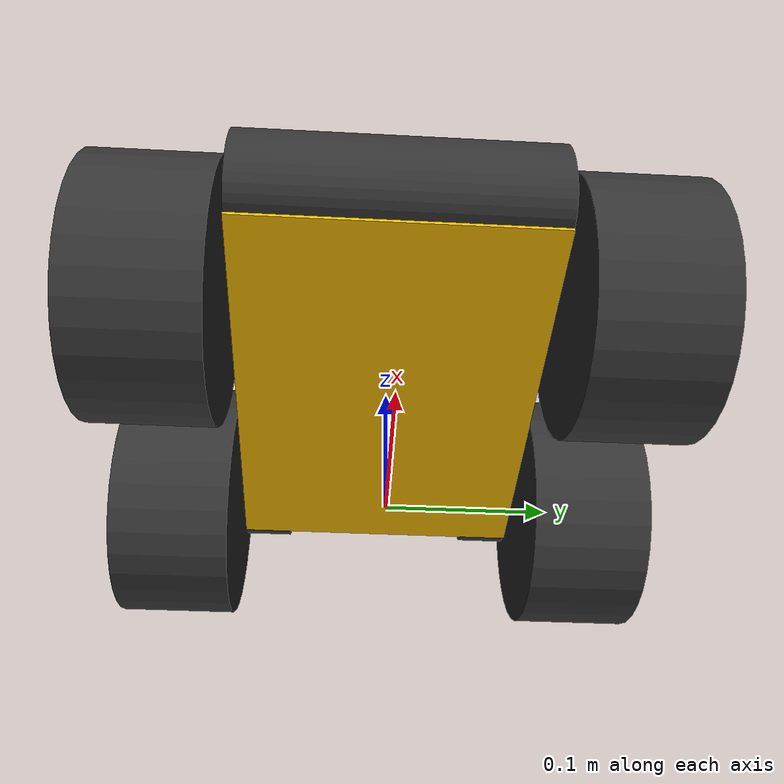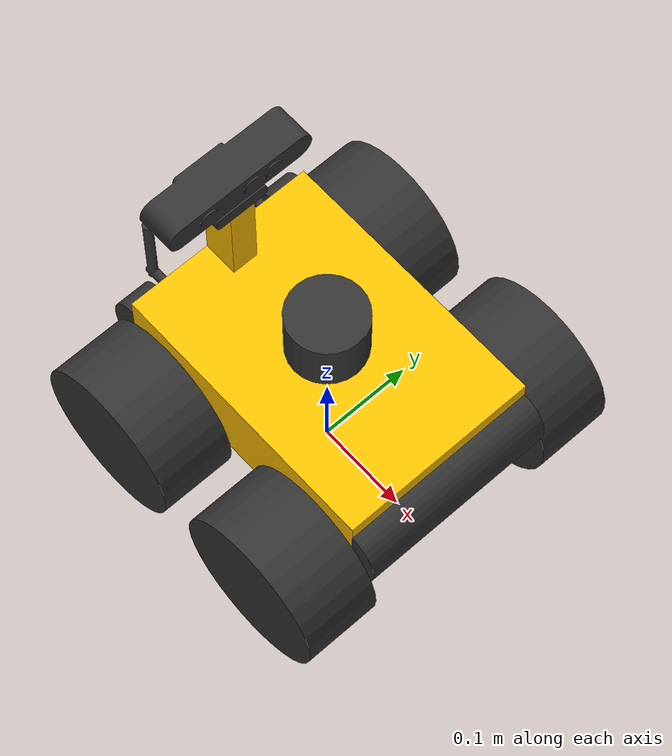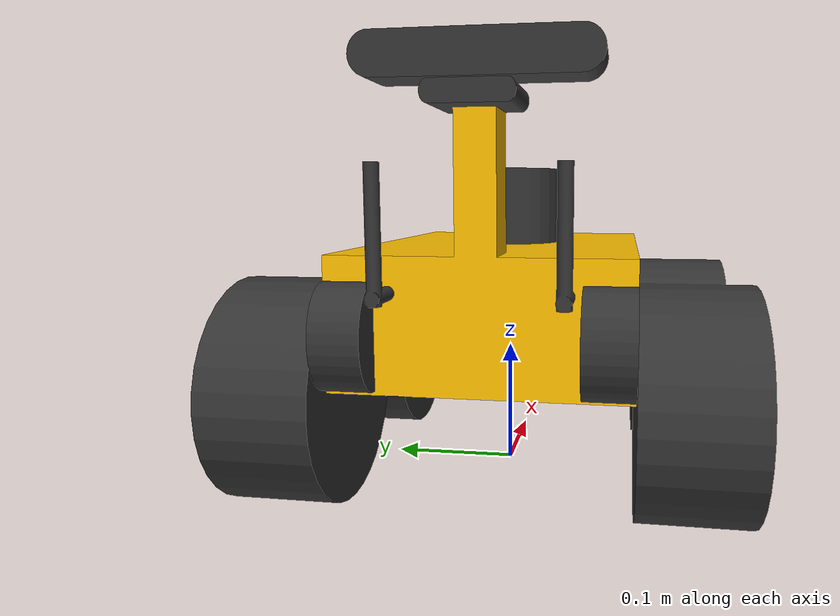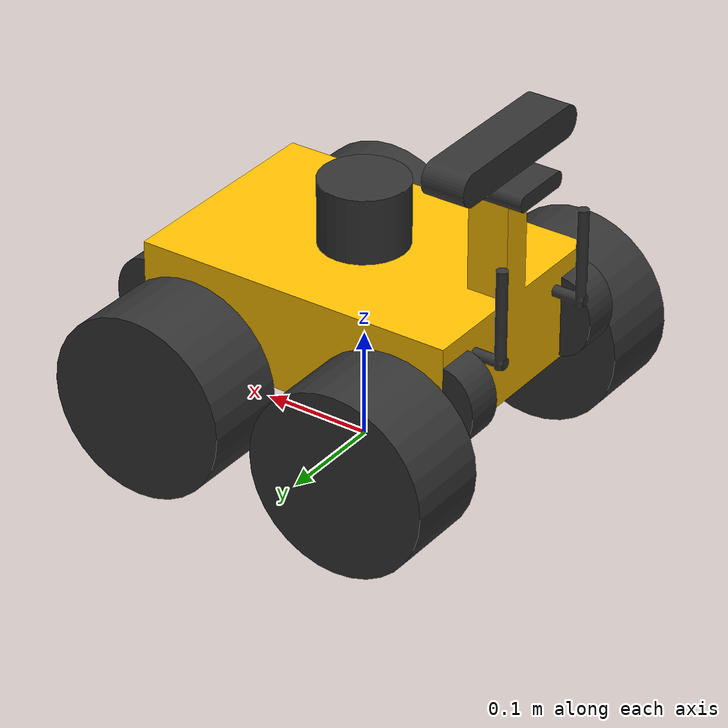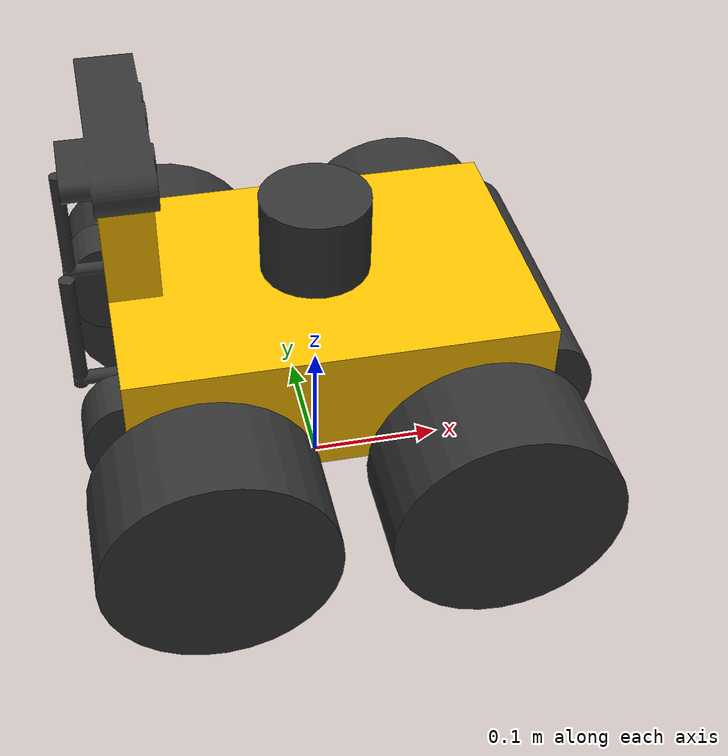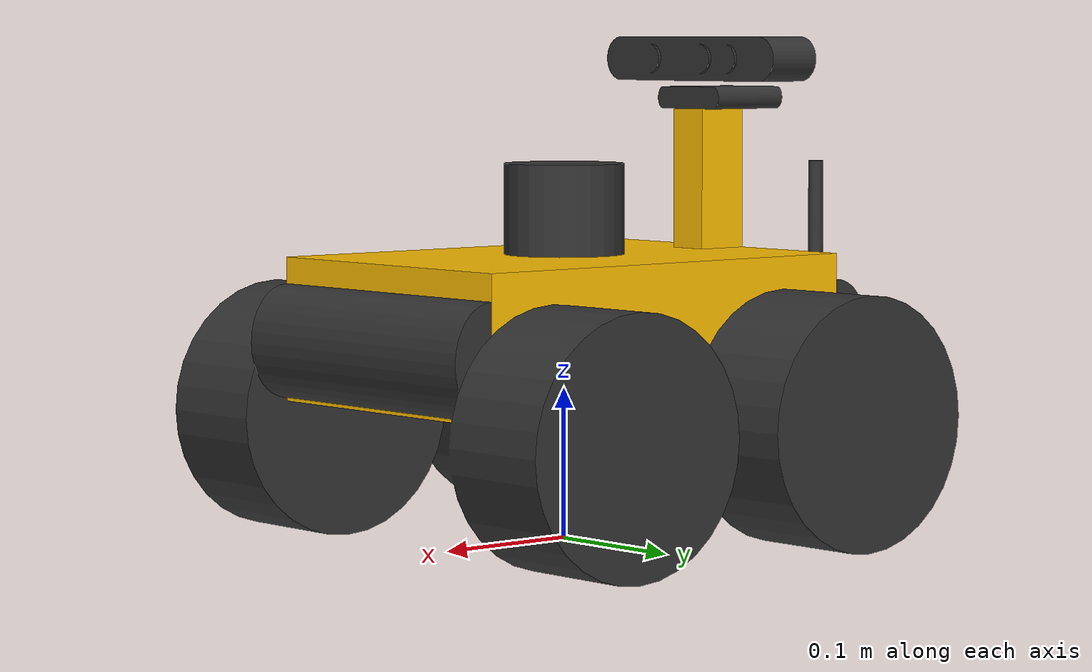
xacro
<?xml version="1.0"?>
<robot name="RoboRaider" xmlns:xacro="http://www.ros.org/wiki/xacro">
    <xacro:include filename="$(find roboraider)/description/roboraider.gazebo" />

    <link name="base_link">
        <!-- main body -->
        <visual>
            <geometry>
                <mesh filename="package://roboraider/description/RoboRaiderGeometry_body.stl"/>
            </geometry>
            <material name="yellow">
                <color rgba="1.0 0.75 0 1"/>
            </material>
            <origin xyz="0 0 0.0935" rpy="0 0 0" />
        </visual>

        <!-- bumper -->
        <visual>
            <geometry>
                <mesh filename="package://roboraider/description/RoboRaiderGeometry_bumper.stl"/>
            </geometry>
            <material name="grey">
                <color rgba="0.2 0.2 0.2 1.0"/>
            </material>
            <origin xyz="0 0 0.0935" rpy="0 0 0" />
        </visual>

        <!-- wheels -->
        <visual>
            <geometry>
                <mesh filename="package://roboraider/description/RoboRaiderGeometry_wheels.stl"/>
            </geometry>
            <material name="grey">
                <color rgba="0.2 0.2 0.2 1.0"/>
            </material>
            <origin xyz="0 0 0.0835" rpy="0 0 0" />
        </visual>

        <!-- Orbbec sensor -->
        <visual>
            <geometry>
                <mesh filename="package://roboraider/description/RoboRaiderGeometry_orbbec.stl"/>
            </geometry>
            <material name="grey">
                <color rgba="0.2 0.2 0.2 1.0"/>
            </material>
            <origin xyz="-0.112 0 0.2835" rpy="0 0 0" />
        </visual>

        <collision>
            <geometry>
                <box size="0.360 0.380 0.200" />
            </geometry>
            <origin xyz="0 0 0.1" rpy="0 0 0" />
        </collision>

        <inertial>
        <origin xyz="0 0 0.0935" rpy="0 0 0"/>
        <mass value="6"/>
        <inertia
            ixx="1.0" ixy="0.0" ixz="0.0"
            iyy="1.0" iyz="0.0"
            izz="1.0"/>
        </inertial>
    </link>

    <link name="rplidar_sensor_frame">
    </link>

    <link name="rplidar_sensor_sim_frame">
        <visual>
            <origin xyz="0 0 0" rpy="0 0 0"/>
            <geometry>
                <cylinder radius="0.04" length="0.06"/>
            </geometry>
            <material name="grey">
                <color rgba="0.2 0.2 0.2 1.0"/>
            </material>
        </visual>

        <collision>
            <origin xyz="0 0 0" rpy="0 0 0"/>
            <geometry>
                <cylinder radius="0.04" length="0.06"/>
            </geometry>
        </collision>

        <inertial>
            <origin xyz="0 0 0" rpy="0 0 0"/>
            <mass value="1e-5" />
            <inertia ixx="1e-6" ixy="0" ixz="0" iyy="1e-6" iyz="0" izz="1e-6" />
        </inertial>
    </link>

    <link name="camera_link">
    </link>

    <link name="sonar_sensor_frame">
    </link>

    <joint name="base_to_rplidar_sensor_frame" type="fixed">
        <parent link="base_link"/>
        <child  link="rplidar_sensor_frame"/>
        <origin xyz="0 0 0.2193" rpy="0 0 3.1415927"/>
    </joint>

    <joint name="base_to_rplidar_sensor_sim_frame" type="fixed">
        <parent link="base_link"/>
        <child  link="rplidar_sensor_sim_frame"/>
        <origin xyz="0 0 0.2193" rpy="0 0 0"/>
    </joint>

    <joint name="base_to_orbbec_sensor_frame" type="fixed">
        <parent link="base_link"/>
        <child  link="camera_link"/>
        <origin xyz="-0.112 0.0375 0.3175"/>
    </joint>

    <joint name="base_to_sonar_sensor_frame" type="fixed">
        <parent link="base_link"/>
        <child  link="sonar_sensor_frame"/>
        <origin xyz="0.16 0.0 0.065"/>
    </joint>

</robot>
